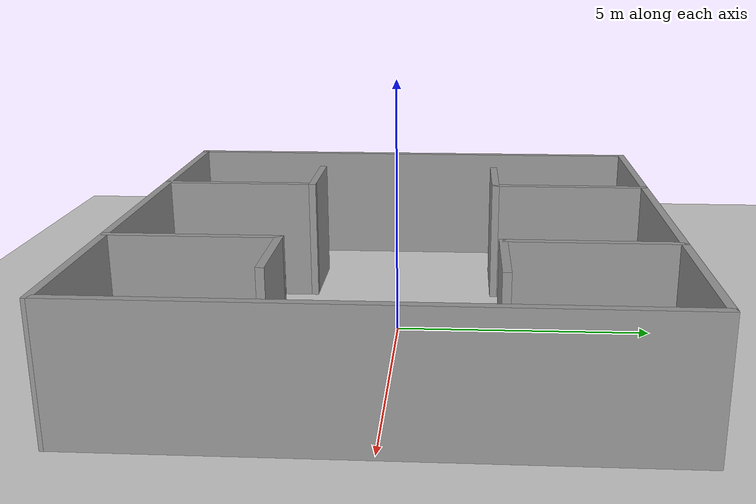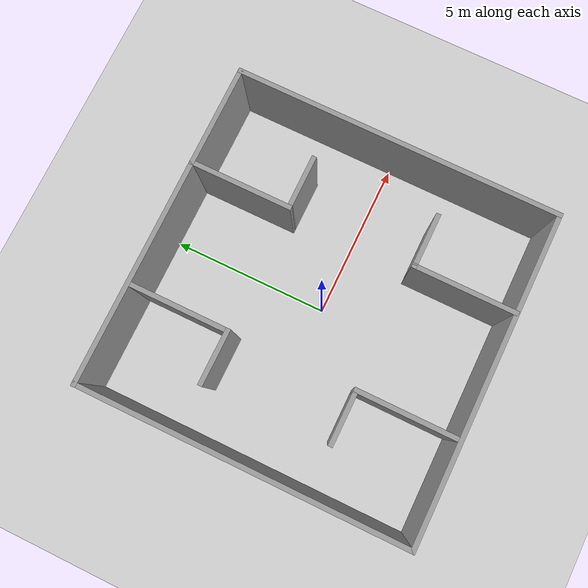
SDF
<?xml version="1.0" ?>

<sdf version="1.6">
<world name="default">
	<include>
		<uri>model://sun</uri>
		<pose>0 0 100 0 0 0</pose>
	</include>

	<include>
		<uri>model://ground_plane</uri>
	</include>

	<include>
		<uri>model://ambiente_2</uri>
		<pose>0 0 0 0 0 0</pose>
	</include>
</world>
</sdf>

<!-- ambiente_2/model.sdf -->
<sdf version='1.7'>
  <model name='ambiente_2'>
    <pose>0.034122 0.06701 0 0 -0 0</pose>
    <link name='Wall_11'>
      <collision name='Wall_11_Collision'>
        <geometry>
          <box>
            <size>10.3017 0.15 2.5</size>
          </box>
        </geometry>
        <pose>0 0 1.25 0 -0 0</pose>
      </collision>
      <visual name='Wall_11_Visual'>
        <pose>0 0 1.25 0 -0 0</pose>
        <geometry>
          <box>
            <size>10.3017 0.15 2.5</size>
          </box>
        </geometry>
        <material>
          <script>
            <uri>file://media/materials/scripts/gazebo.material</uri>
            <name>Gazebo/Grey</name>
          </script>
          <ambient>1 1 1 1</ambient>
        </material>
        <meta>
          <layer>0</layer>
        </meta>
      </visual>
      <pose>5.07683 0.002116 0 0 -0 1.57038</pose>
    </link>
    <link name='Wall_15'>
      <collision name='Wall_15_Collision'>
        <geometry>
          <box>
            <size>3.25 0.15 2.5</size>
          </box>
        </geometry>
        <pose>0 0 1.25 0 -0 0</pose>
      </collision>
      <visual name='Wall_15_Visual'>
        <pose>0 0 1.25 0 -0 0</pose>
        <geometry>
          <box>
            <size>3.25 0.15 2.5</size>
          </box>
        </geometry>
        <material>
          <script>
            <uri>file://media/materials/scripts/gazebo.material</uri>
            <name>Gazebo/Grey</name>
          </script>
          <ambient>1 1 1 1</ambient>
        </material>
        <meta>
          <layer>0</layer>
        </meta>
      </visual>
      <pose>-1.90188 -3.50104 0 0 -0 1.5708</pose>
    </link>
    <link name='Wall_18'>
      <collision name='Wall_18_Collision'>
        <geometry>
          <box>
            <size>1.75 0.15 2.5</size>
          </box>
        </geometry>
        <pose>0 0 1.25 0 -0 0</pose>
      </collision>
      <visual name='Wall_18_Visual'>
        <pose>0 0 1.25 0 -0 0</pose>
        <geometry>
          <box>
            <size>1.75 0.15 2.5</size>
          </box>
        </geometry>
        <material>
          <script>
            <uri>file://media/materials/scripts/gazebo.material</uri>
            <name>Gazebo/Grey</name>
          </script>
          <ambient>1 1 1 1</ambient>
        </material>
        <meta>
          <layer>0</layer>
        </meta>
      </visual>
      <pose>-2.70188 -1.95104 0 0 -0 3.14159</pose>
    </link>
    <link name='Wall_2'>
      <collision name='Wall_2_Collision'>
        <geometry>
          <box>
            <size>10.25 0.15 2.5</size>
          </box>
        </geometry>
        <pose>0 0 1.25 0 -0 0</pose>
      </collision>
      <visual name='Wall_2_Visual'>
        <pose>0 0 1.25 0 -0 0</pose>
        <geometry>
          <box>
            <size>10.25 0.15 2.5</size>
          </box>
        </geometry>
        <material>
          <script>
            <uri>file://media/materials/scripts/gazebo.material</uri>
            <name>Gazebo/Grey</name>
          </script>
          <ambient>1 1 1 1</ambient>
        </material>
        <meta>
          <layer>0</layer>
        </meta>
      </visual>
      <pose>-0.028887 5.08526 0 0 -0 0</pose>
    </link>
    <link name='Wall_23'>
      <collision name='Wall_23_Collision'>
        <geometry>
          <box>
            <size>3.25 0.15 2.5</size>
          </box>
        </geometry>
        <pose>0 0 1.25 0 -0 0</pose>
      </collision>
      <visual name='Wall_23_Visual'>
        <pose>0 0 1.25 0 -0 0</pose>
        <geometry>
          <box>
            <size>3.25 0.15 2.5</size>
          </box>
        </geometry>
        <material>
          <script>
            <uri>file://media/materials/scripts/gazebo.material</uri>
            <name>Gazebo/Grey</name>
          </script>
          <ambient>1 1 1 1</ambient>
        </material>
        <meta>
          <layer>0</layer>
        </meta>
      </visual>
      <pose>1.94593 -3.50142 0 0 -0 1.5708</pose>
    </link>
    <link name='Wall_27'>
      <collision name='Wall_27_Collision'>
        <geometry>
          <box>
            <size>3.25 0.15 2.5</size>
          </box>
        </geometry>
        <pose>0 0 1.25 0 -0 0</pose>
      </collision>
      <visual name='Wall_27_Visual'>
        <pose>0 0 1.25 0 -0 0</pose>
        <geometry>
          <box>
            <size>3.25 0.15 2.5</size>
          </box>
        </geometry>
        <material>
          <script>
            <uri>file://media/materials/scripts/gazebo.material</uri>
            <name>Gazebo/Grey</name>
          </script>
          <ambient>1 1 1 1</ambient>
        </material>
        <meta>
          <layer>0</layer>
        </meta>
      </visual>
      <pose>-1.96272 3.51277 0 0 -0 -1.5708</pose>
    </link>
    <link name='Wall_28'>
      <collision name='Wall_28_Collision'>
        <geometry>
          <box>
            <size>1.75 0.15 2.5</size>
          </box>
        </geometry>
        <pose>0 0 1.25 0 -0 0</pose>
      </collision>
      <visual name='Wall_28_Visual'>
        <pose>0 0 1.25 0 -0 0</pose>
        <geometry>
          <box>
            <size>1.75 0.15 2.5</size>
          </box>
        </geometry>
        <material>
          <script>
            <uri>file://media/materials/scripts/gazebo.material</uri>
            <name>Gazebo/Grey</name>
          </script>
          <ambient>1 1 1 1</ambient>
        </material>
        <meta>
          <layer>0</layer>
        </meta>
      </visual>
      <pose>-2.76272 1.96277 0 0 -0 3.14159</pose>
    </link>
    <link name='Wall_30'>
      <collision name='Wall_30_Collision'>
        <geometry>
          <box>
            <size>3.25 0.15 2.5</size>
          </box>
        </geometry>
        <pose>0 0 1.25 0 -0 0</pose>
      </collision>
      <visual name='Wall_30_Visual'>
        <pose>0 0 1.25 0 -0 0</pose>
        <geometry>
          <box>
            <size>3.25 0.15 2.5</size>
          </box>
        </geometry>
        <material>
          <script>
            <uri>file://media/materials/scripts/gazebo.material</uri>
            <name>Gazebo/Grey</name>
          </script>
          <ambient>1 1 1 1</ambient>
        </material>
        <meta>
          <layer>0</layer>
        </meta>
      </visual>
      <pose>1.96114 3.52798 0 0 -0 -1.5708</pose>
    </link>
    <link name='Wall_31'>
      <collision name='Wall_31_Collision'>
        <geometry>
          <box>
            <size>1.75 0.15 2.5</size>
          </box>
        </geometry>
        <pose>0 0 1.25 0 -0 0</pose>
      </collision>
      <visual name='Wall_31_Visual'>
        <pose>0 0 1.25 0 -0 0</pose>
        <geometry>
          <box>
            <size>1.75 0.15 2.5</size>
          </box>
        </geometry>
        <material>
          <script>
            <uri>file://media/materials/scripts/gazebo.material</uri>
            <name>Gazebo/Grey</name>
          </script>
          <ambient>1 1 1 1</ambient>
        </material>
        <meta>
          <layer>0</layer>
        </meta>
      </visual>
      <pose>2.76114 1.97798 0 0 -0 0</pose>
    </link>
    <link name='Wall_33'>
      <collision name='Wall_33_Collision'>
        <geometry>
          <box>
            <size>1.75 0.15 2.5</size>
          </box>
        </geometry>
        <pose>0 0 1.25 0 -0 0</pose>
      </collision>
      <visual name='Wall_33_Visual'>
        <pose>0 0 1.25 0 -0 0</pose>
        <geometry>
          <box>
            <size>1.75 0.15 2.5</size>
          </box>
        </geometry>
        <material>
          <script>
            <uri>file://media/materials/scripts/gazebo.material</uri>
            <name>Gazebo/Grey</name>
          </script>
          <ambient>1 1 1 1</ambient>
        </material>
        <meta>
          <layer>0</layer>
        </meta>
      </visual>
      <pose>2.74593 -1.95142 0 0 -0 0</pose>
    </link>
    <link name='Wall_6'>
      <collision name='Wall_6_Collision'>
        <geometry>
          <box>
            <size>10.309 0.15 2.5</size>
          </box>
        </geometry>
        <pose>0 0 1.25 0 -0 0</pose>
      </collision>
      <visual name='Wall_6_Visual'>
        <pose>0 0 1.25 0 -0 0</pose>
        <geometry>
          <box>
            <size>10.309 0.15 2.5</size>
          </box>
        </geometry>
        <material>
          <script>
            <uri>file://media/materials/scripts/gazebo.material</uri>
            <name>Gazebo/Grey</name>
          </script>
          <ambient>1 1 1 1</ambient>
        </material>
        <meta>
          <layer>0</layer>
        </meta>
      </visual>
      <pose>-5.07358 0.005753 0 0 -0 -1.56975</pose>
    </link>
    <link name='Wall_9'>
      <collision name='Wall_9_Collision'>
        <geometry>
          <box>
            <size>10.293 0.15 2.5</size>
          </box>
        </geometry>
        <pose>0 0 1.25 0 -0 0</pose>
      </collision>
      <visual name='Wall_9_Visual'>
        <pose>0 0 1.25 0 -0 0</pose>
        <geometry>
          <box>
            <size>10.293 0.15 2.5</size>
          </box>
        </geometry>
        <material>
          <script>
            <uri>file://media/materials/scripts/gazebo.material</uri>
            <name>Gazebo/Grey</name>
          </script>
          <ambient>1 1 1 1</ambient>
        </material>
        <meta>
          <layer>0</layer>
        </meta>
      </visual>
      <pose>0.003218 -5.0795 0 0 -0 -3.14046</pose>
    </link>
    <static>1</static>
  </model>
</sdf>
